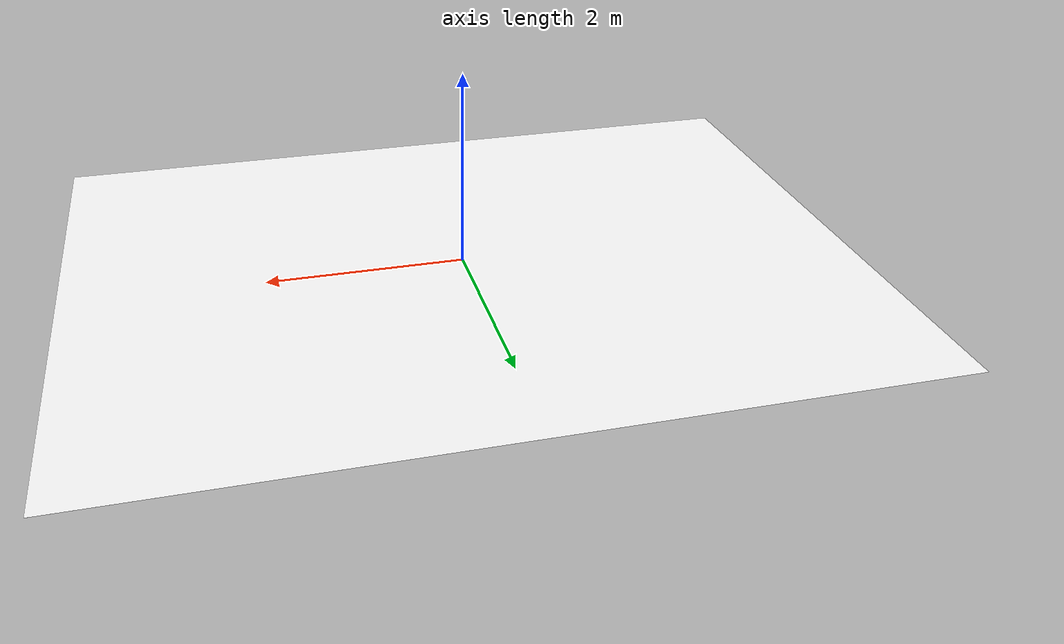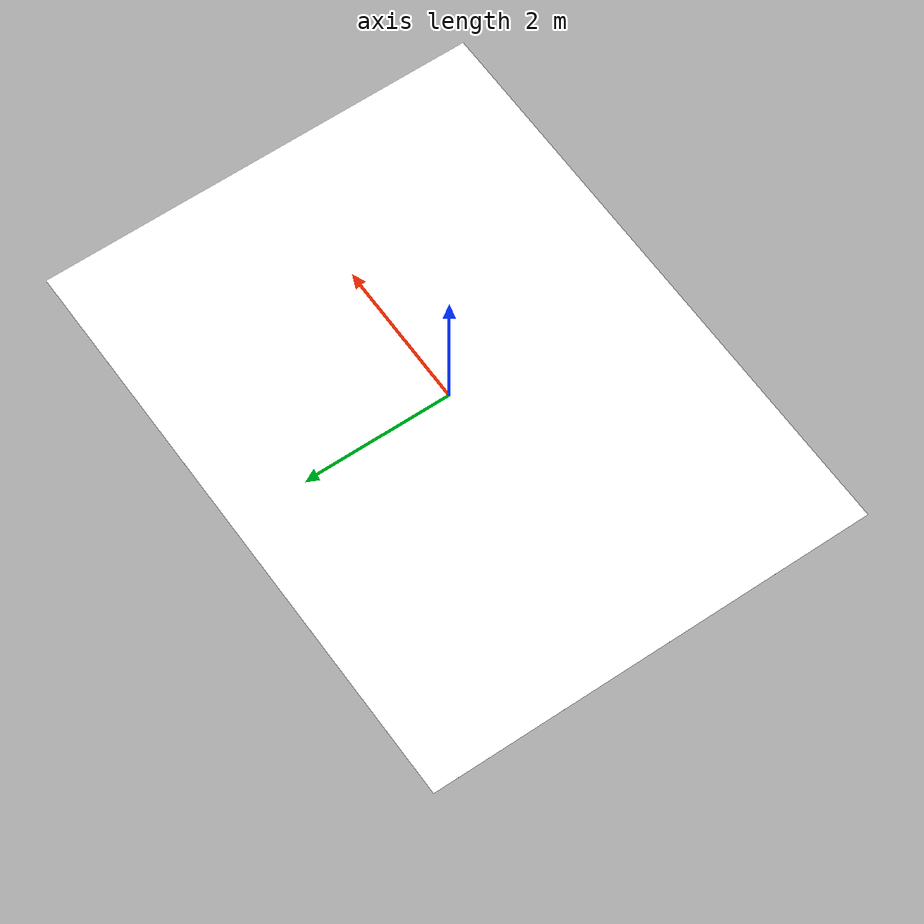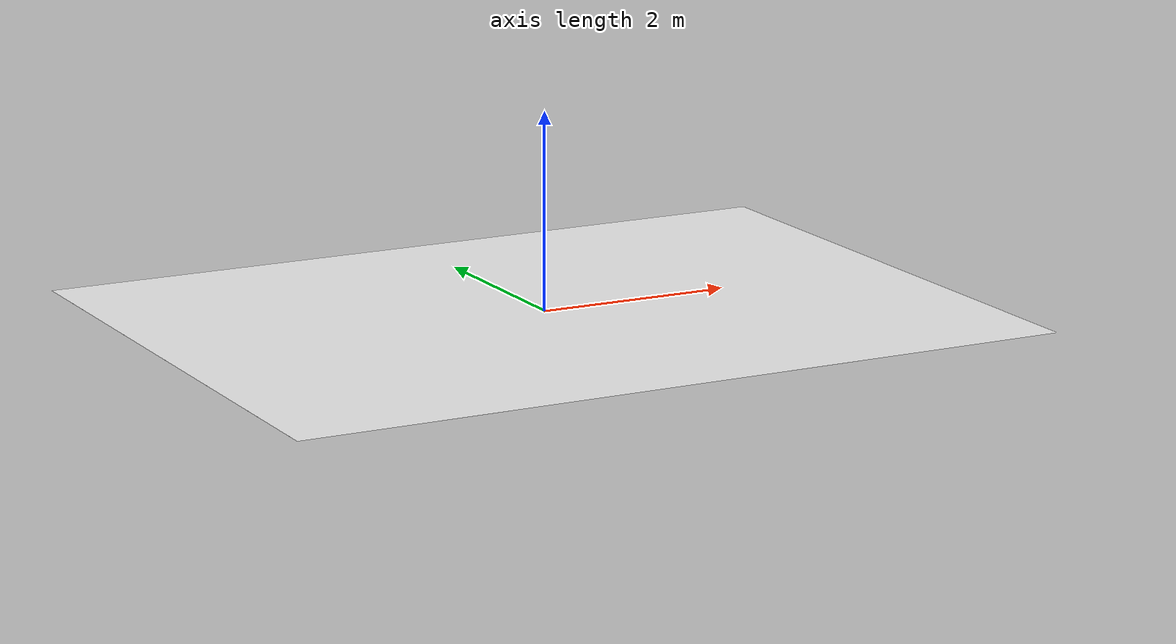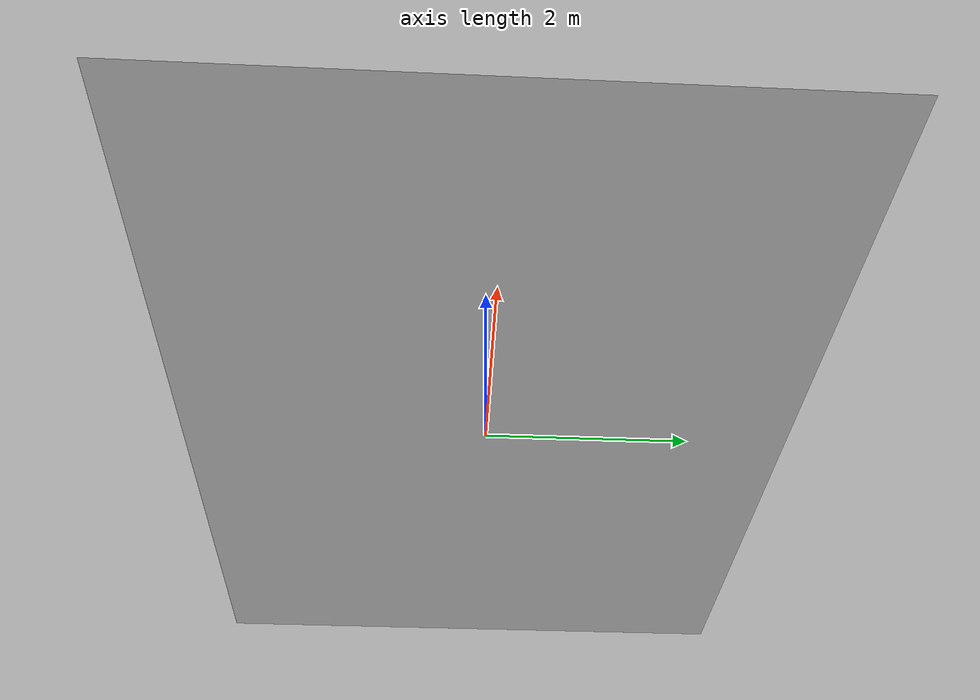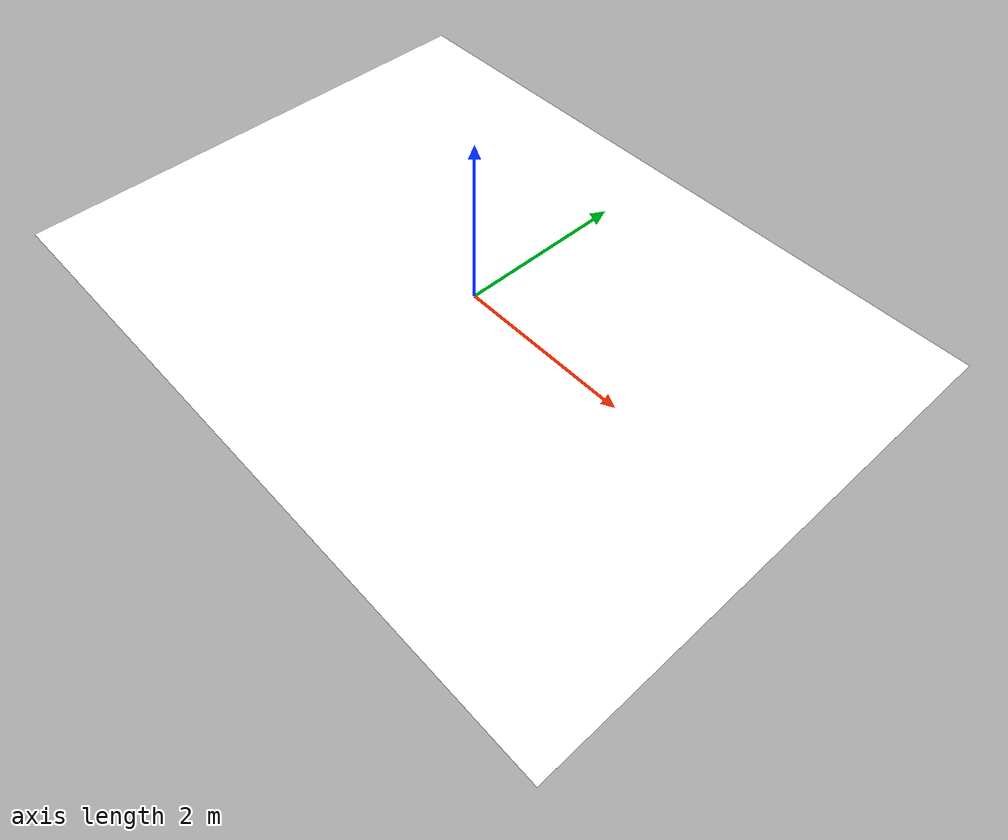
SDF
<?xml version='1.0'?>
<sdf version='1.5'>
  <model name='circuit'>

    <link name='marker'>
      <pose frame=''>0 0 0 0 0 0</pose>
      <visual name='visual'>
        <geometry>
          <box>
            <size>8.0 6.0 1e-04</size>
          </box>
        </geometry>
        <material>
          <script>
            <uri>model://circuit/materials/scripts</uri>
            <uri>model://circuit/materials/textures</uri>
            <name>Circuit/Mat</name>
          </script>
          <ambient>1 1 1 1</ambient>
          <diffuse>1 1 1 1</diffuse>
          <specular>0 0 0 1</specular>
          <emissive>1 1 1 0</emissive>
          <shader type='vertex'>
            <normal_map>__default__</normal_map>
          </shader>
        </material>
        <pose frame=''>0 0 0 0 -0 0</pose>
        <cast_shadows>1</cast_shadows>
        <transparency>0</transparency>
      </visual>
      <collision name='collision'>
        <laser_retro>0</laser_retro>
        <max_contacts>10</max_contacts>
        <pose frame=''>0 0 0 0 -0 0</pose>
        <geometry>
          <box>
            <size>4.0 7.0 1e-04</size>
          </box>
        </geometry>
      </collision>
    </link>

    <link name='marker_pad'>
      <pose frame='marker'>0 0 -1e-04 0 -0 0</pose>
      <visual name='visual'>
        <geometry>
          <box>
            <size>8.0 6.0 1e-04</size>
          </box>
        </geometry>
        <material>
          <lighting>0</lighting>
          <script>
            <uri>file://media/materials/scripts/gazebo.material</uri>
            <name>Gazebo/White</name>
          </script>
          <ambient>0.3 0.3 0.3 1</ambient>
          <diffuse>0.7 0.7 0.7 1</diffuse>
          <specular>0.01 0.01 0.01 1</specular>
          <emissive>1 1 1 0</emissive>
          <shader type='vertex'>
            <normal_map>__default__</normal_map>
          </shader>
        </material>
        <cast_shadows>1</cast_shadows>
        <transparency>0</transparency>
      </visual>
      <collision name='collision'>
        <laser_retro>0</laser_retro>
        <max_contacts>10</max_contacts>
        <pose frame=''>0 0 0 0 -0 0</pose>
        <geometry>
          <box>
            <size>4.0 7.0 1e-03</size>
          </box>
        </geometry>
        <surface>
          <friction>
            <ode>
              <mu>1e6</mu>
              <mu2>1e6</mu2>
            </ode>
          </friction>
        </surface>
      </collision>
    </link>

    <joint name='marker_JOINT_marker_pad' type='revolute'>
      <parent>marker</parent>
      <child>marker_pad</child>
      <pose frame=''>0 0 0 0 -0 0</pose>
      <axis>
        <xyz>0 0 1</xyz>
        <limit>
          <upper>0</upper>
          <lower>0</lower>
        </limit>
      </axis>
    </joint>

    <static>1</static>
    <allow_auto_disable>1</allow_auto_disable>

  </model>
</sdf>
